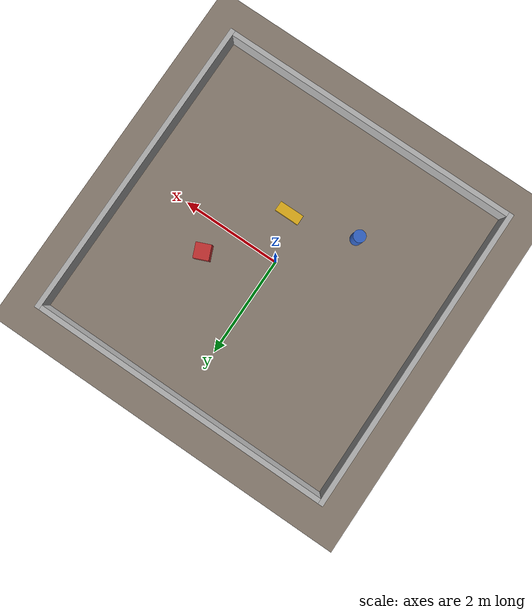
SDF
<?xml version="1.0"?>
<!-- 6 x 6 m indoor arena with walls and a few obstacles so every sensor has something to see. -->
<sdf version="1.10">
  <world name="test_arena">
    <physics name="1ms" type="ignored">
      <max_step_size>0.001</max_step_size>
      <real_time_factor>1.0</real_time_factor>
    </physics>

    <plugin filename="gz-sim-physics-system" name="gz::sim::systems::Physics"/>
    <plugin filename="gz-sim-user-commands-system" name="gz::sim::systems::UserCommands"/>
    <plugin filename="gz-sim-scene-broadcaster-system" name="gz::sim::systems::SceneBroadcaster"/>
    <plugin filename="gz-sim-sensors-system" name="gz::sim::systems::Sensors">
      <render_engine>ogre2</render_engine>
    </plugin>
    <plugin filename="gz-sim-imu-system" name="gz::sim::systems::Imu"/>

    <gravity>0 0 -9.81</gravity>
    <scene>
      <ambient>0.6 0.6 0.6 1</ambient>
      <background>0.8 0.8 0.8 1</background>
      <grid>false</grid>
    </scene>

    <light type="directional" name="sun">
      <cast_shadows>true</cast_shadows>
      <pose>0 0 10 0 0 0</pose>
      <diffuse>0.9 0.9 0.9 1</diffuse>
      <specular>0.2 0.2 0.2 1</specular>
      <direction>-0.4 0.2 -0.9</direction>
    </light>

    <model name="floor">
      <static>true</static>
      <link name="link">
        <collision name="collision">
          <geometry><plane><normal>0 0 1</normal><size>20 20</size></plane></geometry>
          <surface><friction><ode><mu>1.0</mu><mu2>1.0</mu2></ode></friction></surface>
        </collision>
        <visual name="visual">
          <geometry><plane><normal>0 0 1</normal><size>20 20</size></plane></geometry>
          <material><ambient>0.55 0.5 0.45 1</ambient><diffuse>0.55 0.5 0.45 1</diffuse></material>
        </visual>
      </link>
    </model>

    <!-- arena walls, 0.4 m tall -->
    <model name="walls">
      <static>true</static>
      <link name="link">
        <collision name="n"><pose>3.05 0 0.2 0 0 0</pose><geometry><box><size>0.1 6.2 0.4</size></box></geometry></collision>
        <visual name="n"><pose>3.05 0 0.2 0 0 0</pose><geometry><box><size>0.1 6.2 0.4</size></box></geometry></visual>
        <collision name="s"><pose>-3.05 0 0.2 0 0 0</pose><geometry><box><size>0.1 6.2 0.4</size></box></geometry></collision>
        <visual name="s"><pose>-3.05 0 0.2 0 0 0</pose><geometry><box><size>0.1 6.2 0.4</size></box></geometry></visual>
        <collision name="e"><pose>0 3.05 0.2 0 0 0</pose><geometry><box><size>6.0 0.1 0.4</size></box></geometry></collision>
        <visual name="e"><pose>0 3.05 0.2 0 0 0</pose><geometry><box><size>6.0 0.1 0.4</size></box></geometry></visual>
        <collision name="w"><pose>0 -3.05 0.2 0 0 0</pose><geometry><box><size>6.0 0.1 0.4</size></box></geometry></collision>
        <visual name="w"><pose>0 -3.05 0.2 0 0 0</pose><geometry><box><size>6.0 0.1 0.4</size></box></geometry></visual>
      </link>
    </model>

    <model name="box_a">
      <static>true</static>
      <pose>1.2 0.6 0.15 0 0 0.4</pose>
      <link name="link">
        <collision name="c"><geometry><box><size>0.3 0.3 0.3</size></box></geometry></collision>
        <visual name="v"><geometry><box><size>0.3 0.3 0.3</size></box></geometry>
          <material><ambient>0.8 0.2 0.2 1</ambient><diffuse>0.8 0.2 0.2 1</diffuse></material></visual>
      </link>
    </model>
    <model name="pillar_b">
      <static>true</static>
      <pose>-1.0 -1.2 0.25 0 0 0</pose>
      <link name="link">
        <collision name="c"><geometry><cylinder><radius>0.12</radius><length>0.5</length></cylinder></geometry></collision>
        <visual name="v"><geometry><cylinder><radius>0.12</radius><length>0.5</length></cylinder></geometry>
          <material><ambient>0.2 0.4 0.8 1</ambient><diffuse>0.2 0.4 0.8 1</diffuse></material></visual>
      </link>
    </model>
    <model name="low_box_c">
      <static>true</static>
      <pose>0.3 -0.9 0.03 0 0 0</pose>
      <link name="link">
        <collision name="c"><geometry><box><size>0.5 0.2 0.06</size></box></geometry></collision>
        <visual name="v"><geometry><box><size>0.5 0.2 0.06</size></box></geometry>
          <material><ambient>0.9 0.7 0.1 1</ambient><diffuse>0.9 0.7 0.1 1</diffuse></material></visual>
      </link>
    </model>
  </world>
</sdf>
